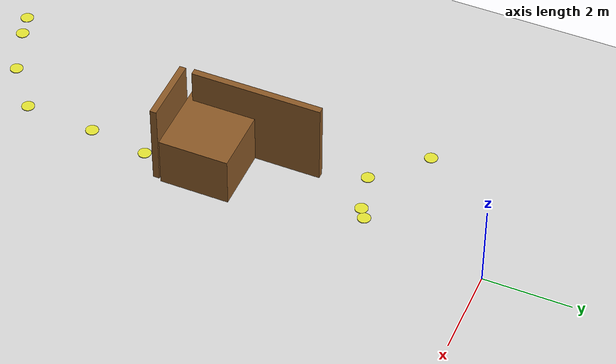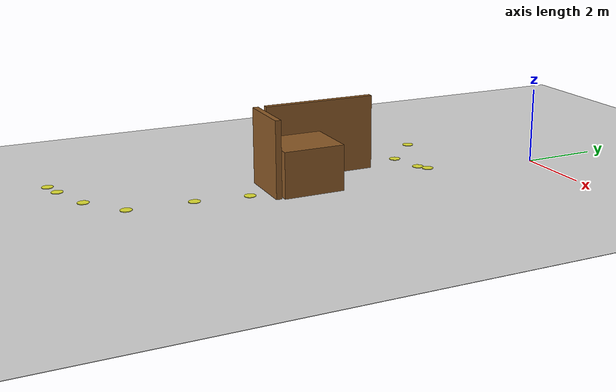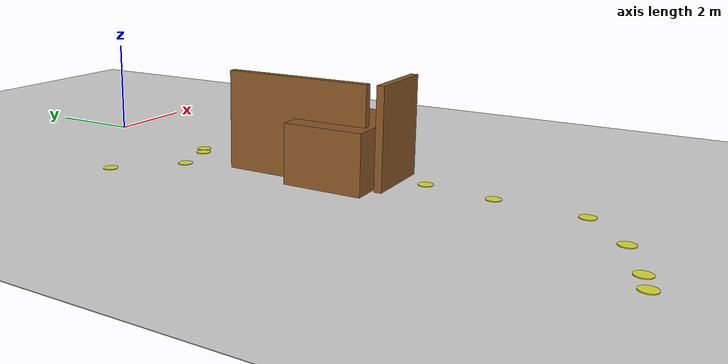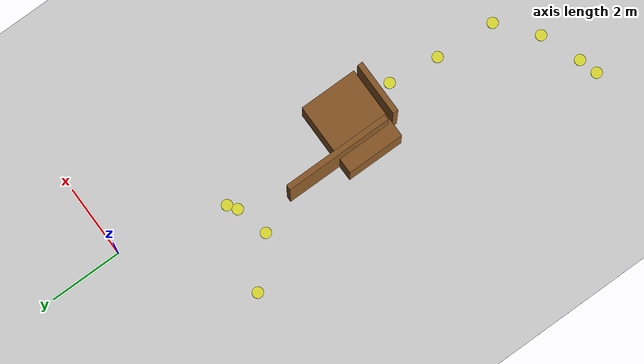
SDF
<sdf version="1.9">
 <world name="botvalley">
  <model name="ground_plane">
   <static>true</static>
   <pose>2.006956100463867 -2.43870210647583 0 0 0 0</pose>
   <link name="ground_link">
    <visual name="ground_visual">
     <geometry><box><size>33.73365783691406 37.907999992370605 0.01</size></box></geometry>
     <material><ambient>0.85 0.85 0.85 1.0</ambient><diffuse>0.85 0.85 0.85 1.0</diffuse></material>
    </visual>
    <collision name="ground_visual_collision">
     <geometry><box><size>33.73365783691406 37.907999992370605 0.01</size></box></geometry>
    </collision>
    <collision name="ground_collision">
     <geometry><plane><normal>0 0 1</normal><size>33.73365783691406 37.907999992370605</size></plane></geometry>
    </collision>
   </link>
  </model>
  <model name="cross_k1_003">
   <static>true</static>
   <pose>-1.758684515953064 -3.2982900142669678 0.01 0 0 0</pose>
   <link name="cross_k1_003_link">
    <visual name="cross_k1_003_vis">
     <geometry><cylinder><radius>0.15</radius><length>0.02</length></cylinder></geometry>
     <material><ambient>0.9 0.9 0.2 1.0</ambient><diffuse>0.9 0.9 0.2 1.0</diffuse></material>
    </visual>
    <collision name="cross_k1_003_vis_collision">
     <geometry><cylinder><radius>0.15</radius><length>0.02</length></cylinder></geometry>
    </collision>
   </link>
  </model>
  <model name="lane_wall_k1_k2_2_010">
   <static>true</static>
   <pose>-1.409238600730896 -5.767369747161865 1.0 0 0 0</pose>
   <link name="lane_wall_k1_k2_2_010_link">
    <visual name="lane_wall_k1_k2_2_010_vis">
     <geometry><box><size>0.15 3.0 2.0</size></box></geometry>
     <material><ambient>0.55 0.35 0.15 1.0</ambient><diffuse>0.55 0.35 0.15 1.0</diffuse></material>
    </visual>
    <collision name="lane_wall_k1_k2_2_010_vis_collision">
     <geometry><box><size>0.15 3.0 2.0</size></box></geometry>
    </collision>
   </link>
  </model>
  <model name="pick_table_k1_k2_5_011">
   <static>true</static>
   <pose>-0.6911510825157166 -6.122629547119141 0.4 0 0 0</pose>
   <link name="pick_table_k1_k2_5_011_link">
    <visual name="pick_table_k1_k2_5_011_vis">
     <geometry><box><size>1.5 0.5 0.8</size></box></geometry>
     <material><ambient>0.0 0.4 1.0 1.0</ambient><diffuse>0.0 0.4 1.0 1.0</diffuse></material>
    </visual>
    <collision name="pick_table_k1_k2_5_011_vis_collision">
     <geometry><box><size>1.5 0.5 0.8</size></box></geometry>
    </collision>
   </link>
  </model>
  <model name="pick_shelf_k1_k2_5_012">
   <static>true</static>
   <pose>-0.6911510825157166 -7.5226295471191404 1.0 0 0 0</pose>
   <link name="pick_shelf_k1_k2_5_012_link">
    <visual name="pick_shelf_k1_k2_5_012_vis">
     <geometry><box><size>1.5 0.15 2.0</size></box></geometry>
     <material><ambient>0.55 0.35 0.15 1.0</ambient><diffuse>0.55 0.35 0.15 1.0</diffuse></material>
    </visual>
    <collision name="pick_shelf_k1_k2_5_012_vis_collision">
     <geometry><box><size>1.5 0.15 2.0</size></box></geometry>
    </collision>
   </link>
  </model>
  <model name="cross_k7_k1_10_043">
   <static>true</static>
   <pose>-2.8607993125915527 -2.2503156661987305 0.01 0 0 0</pose>
   <link name="cross_k7_k1_10_043_link">
    <visual name="cross_k7_k1_10_043_vis">
     <geometry><cylinder><radius>0.15</radius><length>0.02</length></cylinder></geometry>
     <material><ambient>0.9 0.9 0.2 1.0</ambient><diffuse>0.9 0.9 0.2 1.0</diffuse></material>
    </visual>
    <collision name="cross_k7_k1_10_043_vis_collision">
     <geometry><cylinder><radius>0.15</radius><length>0.02</length></cylinder></geometry>
    </collision>
   </link>
  </model>
  <model name="cross_c1_k1_4_047">
   <static>true</static>
   <pose>-0.6126672625541687 -2.919334888458252 0.01 0 0 0</pose>
   <link name="cross_c1_k1_4_047_link">
    <visual name="cross_c1_k1_4_047_vis">
     <geometry><cylinder><radius>0.15</radius><length>0.02</length></cylinder></geometry>
     <material><ambient>0.9 0.9 0.2 1.0</ambient><diffuse>0.9 0.9 0.2 1.0</diffuse></material>
    </visual>
    <collision name="cross_c1_k1_4_047_vis_collision">
     <geometry><cylinder><radius>0.15</radius><length>0.02</length></cylinder></geometry>
    </collision>
   </link>
  </model>
  <model name="cross_c1_k1_5_048">
   <static>true</static>
   <pose>-0.8555136919021606 -3.078702688217163 0.01 0 0 0</pose>
   <link name="cross_c1_k1_5_048_link">
    <visual name="cross_c1_k1_5_048_vis">
     <geometry><cylinder><radius>0.15</radius><length>0.02</length></cylinder></geometry>
     <material><ambient>0.9 0.9 0.2 1.0</ambient><diffuse>0.9 0.9 0.2 1.0</diffuse></material>
    </visual>
    <collision name="cross_c1_k1_5_048_vis_collision">
     <geometry><cylinder><radius>0.15</radius><length>0.02</length></cylinder></geometry>
    </collision>
   </link>
  </model>
  <model name="cross_o2_new_k1_k2_5_1_057">
   <static>true</static>
   <pose>-2.859428882598877 -12.315691947937012 0.01 0 0 0</pose>
   <link name="cross_o2_new_k1_k2_5_1_057_link">
    <visual name="cross_o2_new_k1_k2_5_1_057_vis">
     <geometry><cylinder><radius>0.15</radius><length>0.02</length></cylinder></geometry>
     <material><ambient>0.9 0.9 0.2 1.0</ambient><diffuse>0.9 0.9 0.2 1.0</diffuse></material>
    </visual>
    <collision name="cross_o2_new_k1_k2_5_1_057_vis_collision">
     <geometry><cylinder><radius>0.15</radius><length>0.02</length></cylinder></geometry>
    </collision>
   </link>
  </model>
  <model name="cross_o2_new_k1_k2_5_2_058">
   <static>true</static>
   <pose>-1.7669177055358887 -11.899580001831055 0.01 0 0 0</pose>
   <link name="cross_o2_new_k1_k2_5_2_058_link">
    <visual name="cross_o2_new_k1_k2_5_2_058_vis">
     <geometry><cylinder><radius>0.15</radius><length>0.02</length></cylinder></geometry>
     <material><ambient>0.9 0.9 0.2 1.0</ambient><diffuse>0.9 0.9 0.2 1.0</diffuse></material>
    </visual>
    <collision name="cross_o2_new_k1_k2_5_2_058_vis_collision">
     <geometry><cylinder><radius>0.15</radius><length>0.02</length></cylinder></geometry>
    </collision>
   </link>
  </model>
  <model name="cross_o2_new_k1_k2_5_3_059">
   <static>true</static>
   <pose>-0.787115752696991 -11.096843719482422 0.01 0 0 0</pose>
   <link name="cross_o2_new_k1_k2_5_3_059_link">
    <visual name="cross_o2_new_k1_k2_5_3_059_vis">
     <geometry><cylinder><radius>0.15</radius><length>0.02</length></cylinder></geometry>
     <material><ambient>0.9 0.9 0.2 1.0</ambient><diffuse>0.9 0.9 0.2 1.0</diffuse></material>
    </visual>
    <collision name="cross_o2_new_k1_k2_5_3_059_vis_collision">
     <geometry><cylinder><radius>0.15</radius><length>0.02</length></cylinder></geometry>
    </collision>
   </link>
  </model>
  <model name="cross_o2_new_k1_k2_5_4_060">
   <static>true</static>
   <pose>-0.6764636635780334 -9.44577407836914 0.01 0 0 0</pose>
   <link name="cross_o2_new_k1_k2_5_4_060_link">
    <visual name="cross_o2_new_k1_k2_5_4_060_vis">
     <geometry><cylinder><radius>0.15</radius><length>0.02</length></cylinder></geometry>
     <material><ambient>0.9 0.9 0.2 1.0</ambient><diffuse>0.9 0.9 0.2 1.0</diffuse></material>
    </visual>
    <collision name="cross_o2_new_k1_k2_5_4_060_vis_collision">
     <geometry><cylinder><radius>0.15</radius><length>0.02</length></cylinder></geometry>
    </collision>
   </link>
  </model>
  <model name="cross_o2_new_k1_k2_5_5_061">
   <static>true</static>
   <pose>-0.49914029240608215 -8.072136878967285 0.01 0 0 0</pose>
   <link name="cross_o2_new_k1_k2_5_5_061_link">
    <visual name="cross_o2_new_k1_k2_5_5_061_vis">
     <geometry><cylinder><radius>0.15</radius><length>0.02</length></cylinder></geometry>
     <material><ambient>0.9 0.9 0.2 1.0</ambient><diffuse>0.9 0.9 0.2 1.0</diffuse></material>
    </visual>
    <collision name="cross_o2_new_k1_k2_5_5_061_vis_collision">
     <geometry><cylinder><radius>0.15</radius><length>0.02</length></cylinder></geometry>
    </collision>
   </link>
  </model>
  <model name="cross_o2_new_o2_new_k1_k2_5_1_1_065">
   <static>true</static>
   <pose>-3.3683223724365234 -12.461050987243652 0.01 0 0 0</pose>
   <link name="cross_o2_new_o2_new_k1_k2_5_1_1_065_link">
    <visual name="cross_o2_new_o2_new_k1_k2_5_1_1_065_vis">
     <geometry><cylinder><radius>0.15</radius><length>0.02</length></cylinder></geometry>
     <material><ambient>0.9 0.9 0.2 1.0</ambient><diffuse>0.9 0.9 0.2 1.0</diffuse></material>
    </visual>
    <collision name="cross_o2_new_o2_new_k1_k2_5_1_1_065_vis_collision">
     <geometry><cylinder><radius>0.15</radius><length>0.02</length></cylinder></geometry>
    </collision>
   </link>
  </model>
  <model name="zone_ZoneB_068">
   <static>true</static>
   <pose>-0.895 -6.59 0.6 0 0 0</pose>
   <link name="zone_ZoneB_068_link">
    <visual name="zone_ZoneB_068_vis">
     <geometry><box><size>2.03 1.5999999999999996 1.2</size></box></geometry>
     <material><ambient>0.55 0.35 0.15 1.0</ambient><diffuse>0.55 0.35 0.15 1.0</diffuse></material>
    </visual>
    <collision name="zone_ZoneB_068_vis_collision">
     <geometry><box><size>2.03 1.5999999999999996 1.2</size></box></geometry>
    </collision>
   </link>
  </model>
 </world>
</sdf>
